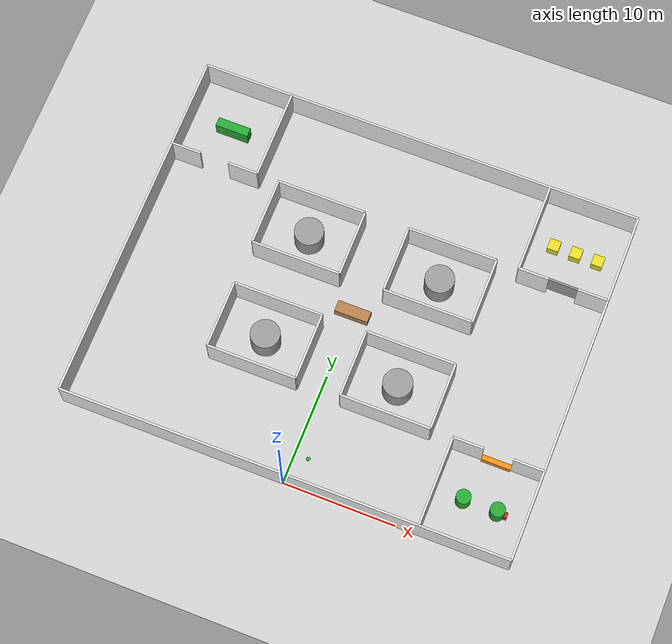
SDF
<?xml version='1.0' encoding='utf-8'?>
<sdf version="1.6">
  <world name="default">
    <physics name="default_physics" default="0" type="ode">
      <max_step_size>0.004</max_step_size>
      <real_time_update_rate>250</real_time_update_rate>
      <real_time_factor>1.0</real_time_factor>
    </physics>
    <scene>
      <ambient>0.65 0.65 0.65 1</ambient>
      <background>0.85 0.88 0.92 1</background>
    </scene>
    <include>
      <uri>model://sun</uri>
    </include>
    <include>
      <uri>model://ground_plane</uri>
    </include>
    <model name="outer_south_0">
      <static>true</static>
      <pose>0.000000 0.000000 1.600000 0.000000 0.000000 0.000000</pose>
      <link name="link">
        <collision name="collision">
          <geometry>
            <box>
              <size>40.000000 0.180000 3.200000</size>
            </box>
          </geometry>
        </collision>
        <visual name="visual">
          <geometry>
            <box>
              <size>40.000000 0.180000 3.200000</size>
            </box>
          </geometry>
          <material>
            <script>
              <uri>file://media/materials/scripts/gazebo.material</uri>
              <name>Gazebo/White</name>
            </script>
          </material>
        </visual>
      </link>
    </model>
    <model name="outer_north_0">
      <static>true</static>
      <pose>0.000000 32.000000 1.600000 0.000000 0.000000 0.000000</pose>
      <link name="link">
        <collision name="collision">
          <geometry>
            <box>
              <size>40.000000 0.180000 3.200000</size>
            </box>
          </geometry>
        </collision>
        <visual name="visual">
          <geometry>
            <box>
              <size>40.000000 0.180000 3.200000</size>
            </box>
          </geometry>
          <material>
            <script>
              <uri>file://media/materials/scripts/gazebo.material</uri>
              <name>Gazebo/White</name>
            </script>
          </material>
        </visual>
      </link>
    </model>
    <model name="outer_west_0">
      <static>true</static>
      <pose>-20.000000 16.000000 1.600000 0.000000 0.000000 0.000000</pose>
      <link name="link">
        <collision name="collision">
          <geometry>
            <box>
              <size>0.180000 32.000000 3.200000</size>
            </box>
          </geometry>
        </collision>
        <visual name="visual">
          <geometry>
            <box>
              <size>0.180000 32.000000 3.200000</size>
            </box>
          </geometry>
          <material>
            <script>
              <uri>file://media/materials/scripts/gazebo.material</uri>
              <name>Gazebo/White</name>
            </script>
          </material>
        </visual>
      </link>
    </model>
    <model name="outer_east_0">
      <static>true</static>
      <pose>20.000000 16.000000 1.600000 0.000000 0.000000 0.000000</pose>
      <link name="link">
        <collision name="collision">
          <geometry>
            <box>
              <size>0.180000 32.000000 3.200000</size>
            </box>
          </geometry>
        </collision>
        <visual name="visual">
          <geometry>
            <box>
              <size>0.180000 32.000000 3.200000</size>
            </box>
          </geometry>
          <material>
            <script>
              <uri>file://media/materials/scripts/gazebo.material</uri>
              <name>Gazebo/White</name>
            </script>
          </material>
        </visual>
      </link>
    </model>
    <model name="cell0_s_0">
      <static>true</static>
      <pose>-6.000000 8.000000 1.600000 0.000000 0.000000 0.000000</pose>
      <link name="link">
        <collision name="collision">
          <geometry>
            <box>
              <size>8.000000 0.180000 3.200000</size>
            </box>
          </geometry>
        </collision>
        <visual name="visual">
          <geometry>
            <box>
              <size>8.000000 0.180000 3.200000</size>
            </box>
          </geometry>
          <material>
            <script>
              <uri>file://media/materials/scripts/gazebo.material</uri>
              <name>Gazebo/White</name>
            </script>
          </material>
        </visual>
      </link>
    </model>
    <model name="cell0_n_0">
      <static>true</static>
      <pose>-6.000000 14.000000 1.600000 0.000000 0.000000 0.000000</pose>
      <link name="link">
        <collision name="collision">
          <geometry>
            <box>
              <size>8.000000 0.180000 3.200000</size>
            </box>
          </geometry>
        </collision>
        <visual name="visual">
          <geometry>
            <box>
              <size>8.000000 0.180000 3.200000</size>
            </box>
          </geometry>
          <material>
            <script>
              <uri>file://media/materials/scripts/gazebo.material</uri>
              <name>Gazebo/White</name>
            </script>
          </material>
        </visual>
      </link>
    </model>
    <model name="cell0_w_0">
      <static>true</static>
      <pose>-10.000000 11.000000 1.600000 0.000000 0.000000 0.000000</pose>
      <link name="link">
        <collision name="collision">
          <geometry>
            <box>
              <size>0.180000 6.000000 3.200000</size>
            </box>
          </geometry>
        </collision>
        <visual name="visual">
          <geometry>
            <box>
              <size>0.180000 6.000000 3.200000</size>
            </box>
          </geometry>
          <material>
            <script>
              <uri>file://media/materials/scripts/gazebo.material</uri>
              <name>Gazebo/White</name>
            </script>
          </material>
        </visual>
      </link>
    </model>
    <model name="cell0_e_0">
      <static>true</static>
      <pose>-2.000000 11.000000 1.600000 0.000000 0.000000 0.000000</pose>
      <link name="link">
        <collision name="collision">
          <geometry>
            <box>
              <size>0.180000 6.000000 3.200000</size>
            </box>
          </geometry>
        </collision>
        <visual name="visual">
          <geometry>
            <box>
              <size>0.180000 6.000000 3.200000</size>
            </box>
          </geometry>
          <material>
            <script>
              <uri>file://media/materials/scripts/gazebo.material</uri>
              <name>Gazebo/White</name>
            </script>
          </material>
        </visual>
      </link>
    </model>
    <model name="process_tank_0">
      <static>true</static>
      <pose>-6.000000 11.000000 1.100000 0.000000 0.000000 0.000000</pose>
      <link name="link">
        <collision name="collision">
          <geometry>
            <cylinder>
              <radius>1.3</radius>
              <length>2.2</length>
            </cylinder>
          </geometry>
        </collision>
        <visual name="visual">
          <geometry>
            <cylinder>
              <radius>1.3</radius>
              <length>2.2</length>
            </cylinder>
          </geometry>
          <material>
            <script>
              <uri>file://media/materials/scripts/gazebo.material</uri>
              <name>Gazebo/Grey</name>
            </script>
          </material>
        </visual>
      </link>
    </model>
    <model name="cell1_s_0">
      <static>true</static>
      <pose>6.000000 8.000000 1.600000 0.000000 0.000000 0.000000</pose>
      <link name="link">
        <collision name="collision">
          <geometry>
            <box>
              <size>8.000000 0.180000 3.200000</size>
            </box>
          </geometry>
        </collision>
        <visual name="visual">
          <geometry>
            <box>
              <size>8.000000 0.180000 3.200000</size>
            </box>
          </geometry>
          <material>
            <script>
              <uri>file://media/materials/scripts/gazebo.material</uri>
              <name>Gazebo/White</name>
            </script>
          </material>
        </visual>
      </link>
    </model>
    <model name="cell1_n_0">
      <static>true</static>
      <pose>6.000000 14.000000 1.600000 0.000000 0.000000 0.000000</pose>
      <link name="link">
        <collision name="collision">
          <geometry>
            <box>
              <size>8.000000 0.180000 3.200000</size>
            </box>
          </geometry>
        </collision>
        <visual name="visual">
          <geometry>
            <box>
              <size>8.000000 0.180000 3.200000</size>
            </box>
          </geometry>
          <material>
            <script>
              <uri>file://media/materials/scripts/gazebo.material</uri>
              <name>Gazebo/White</name>
            </script>
          </material>
        </visual>
      </link>
    </model>
    <model name="cell1_w_0">
      <static>true</static>
      <pose>2.000000 11.000000 1.600000 0.000000 0.000000 0.000000</pose>
      <link name="link">
        <collision name="collision">
          <geometry>
            <box>
              <size>0.180000 6.000000 3.200000</size>
            </box>
          </geometry>
        </collision>
        <visual name="visual">
          <geometry>
            <box>
              <size>0.180000 6.000000 3.200000</size>
            </box>
          </geometry>
          <material>
            <script>
              <uri>file://media/materials/scripts/gazebo.material</uri>
              <name>Gazebo/White</name>
            </script>
          </material>
        </visual>
      </link>
    </model>
    <model name="cell1_e_0">
      <static>true</static>
      <pose>10.000000 11.000000 1.600000 0.000000 0.000000 0.000000</pose>
      <link name="link">
        <collision name="collision">
          <geometry>
            <box>
              <size>0.180000 6.000000 3.200000</size>
            </box>
          </geometry>
        </collision>
        <visual name="visual">
          <geometry>
            <box>
              <size>0.180000 6.000000 3.200000</size>
            </box>
          </geometry>
          <material>
            <script>
              <uri>file://media/materials/scripts/gazebo.material</uri>
              <name>Gazebo/White</name>
            </script>
          </material>
        </visual>
      </link>
    </model>
    <model name="process_tank_1">
      <static>true</static>
      <pose>6.000000 11.000000 1.100000 0.000000 0.000000 0.000000</pose>
      <link name="link">
        <collision name="collision">
          <geometry>
            <cylinder>
              <radius>1.3</radius>
              <length>2.2</length>
            </cylinder>
          </geometry>
        </collision>
        <visual name="visual">
          <geometry>
            <cylinder>
              <radius>1.3</radius>
              <length>2.2</length>
            </cylinder>
          </geometry>
          <material>
            <script>
              <uri>file://media/materials/scripts/gazebo.material</uri>
              <name>Gazebo/Grey</name>
            </script>
          </material>
        </visual>
      </link>
    </model>
    <model name="cell2_s_0">
      <static>true</static>
      <pose>-6.000000 18.000000 1.600000 0.000000 0.000000 0.000000</pose>
      <link name="link">
        <collision name="collision">
          <geometry>
            <box>
              <size>8.000000 0.180000 3.200000</size>
            </box>
          </geometry>
        </collision>
        <visual name="visual">
          <geometry>
            <box>
              <size>8.000000 0.180000 3.200000</size>
            </box>
          </geometry>
          <material>
            <script>
              <uri>file://media/materials/scripts/gazebo.material</uri>
              <name>Gazebo/White</name>
            </script>
          </material>
        </visual>
      </link>
    </model>
    <model name="cell2_n_0">
      <static>true</static>
      <pose>-6.000000 24.000000 1.600000 0.000000 0.000000 0.000000</pose>
      <link name="link">
        <collision name="collision">
          <geometry>
            <box>
              <size>8.000000 0.180000 3.200000</size>
            </box>
          </geometry>
        </collision>
        <visual name="visual">
          <geometry>
            <box>
              <size>8.000000 0.180000 3.200000</size>
            </box>
          </geometry>
          <material>
            <script>
              <uri>file://media/materials/scripts/gazebo.material</uri>
              <name>Gazebo/White</name>
            </script>
          </material>
        </visual>
      </link>
    </model>
    <model name="cell2_w_0">
      <static>true</static>
      <pose>-10.000000 21.000000 1.600000 0.000000 0.000000 0.000000</pose>
      <link name="link">
        <collision name="collision">
          <geometry>
            <box>
              <size>0.180000 6.000000 3.200000</size>
            </box>
          </geometry>
        </collision>
        <visual name="visual">
          <geometry>
            <box>
              <size>0.180000 6.000000 3.200000</size>
            </box>
          </geometry>
          <material>
            <script>
              <uri>file://media/materials/scripts/gazebo.material</uri>
              <name>Gazebo/White</name>
            </script>
          </material>
        </visual>
      </link>
    </model>
    <model name="cell2_e_0">
      <static>true</static>
      <pose>-2.000000 21.000000 1.600000 0.000000 0.000000 0.000000</pose>
      <link name="link">
        <collision name="collision">
          <geometry>
            <box>
              <size>0.180000 6.000000 3.200000</size>
            </box>
          </geometry>
        </collision>
        <visual name="visual">
          <geometry>
            <box>
              <size>0.180000 6.000000 3.200000</size>
            </box>
          </geometry>
          <material>
            <script>
              <uri>file://media/materials/scripts/gazebo.material</uri>
              <name>Gazebo/White</name>
            </script>
          </material>
        </visual>
      </link>
    </model>
    <model name="process_tank_2">
      <static>true</static>
      <pose>-6.000000 21.000000 1.100000 0.000000 0.000000 0.000000</pose>
      <link name="link">
        <collision name="collision">
          <geometry>
            <cylinder>
              <radius>1.3</radius>
              <length>2.2</length>
            </cylinder>
          </geometry>
        </collision>
        <visual name="visual">
          <geometry>
            <cylinder>
              <radius>1.3</radius>
              <length>2.2</length>
            </cylinder>
          </geometry>
          <material>
            <script>
              <uri>file://media/materials/scripts/gazebo.material</uri>
              <name>Gazebo/Grey</name>
            </script>
          </material>
        </visual>
      </link>
    </model>
    <model name="cell3_s_0">
      <static>true</static>
      <pose>6.000000 18.000000 1.600000 0.000000 0.000000 0.000000</pose>
      <link name="link">
        <collision name="collision">
          <geometry>
            <box>
              <size>8.000000 0.180000 3.200000</size>
            </box>
          </geometry>
        </collision>
        <visual name="visual">
          <geometry>
            <box>
              <size>8.000000 0.180000 3.200000</size>
            </box>
          </geometry>
          <material>
            <script>
              <uri>file://media/materials/scripts/gazebo.material</uri>
              <name>Gazebo/White</name>
            </script>
          </material>
        </visual>
      </link>
    </model>
    <model name="cell3_n_0">
      <static>true</static>
      <pose>6.000000 24.000000 1.600000 0.000000 0.000000 0.000000</pose>
      <link name="link">
        <collision name="collision">
          <geometry>
            <box>
              <size>8.000000 0.180000 3.200000</size>
            </box>
          </geometry>
        </collision>
        <visual name="visual">
          <geometry>
            <box>
              <size>8.000000 0.180000 3.200000</size>
            </box>
          </geometry>
          <material>
            <script>
              <uri>file://media/materials/scripts/gazebo.material</uri>
              <name>Gazebo/White</name>
            </script>
          </material>
        </visual>
      </link>
    </model>
    <model name="cell3_w_0">
      <static>true</static>
      <pose>2.000000 21.000000 1.600000 0.000000 0.000000 0.000000</pose>
      <link name="link">
        <collision name="collision">
          <geometry>
            <box>
              <size>0.180000 6.000000 3.200000</size>
            </box>
          </geometry>
        </collision>
        <visual name="visual">
          <geometry>
            <box>
              <size>0.180000 6.000000 3.200000</size>
            </box>
          </geometry>
          <material>
            <script>
              <uri>file://media/materials/scripts/gazebo.material</uri>
              <name>Gazebo/White</name>
            </script>
          </material>
        </visual>
      </link>
    </model>
    <model name="cell3_e_0">
      <static>true</static>
      <pose>10.000000 21.000000 1.600000 0.000000 0.000000 0.000000</pose>
      <link name="link">
        <collision name="collision">
          <geometry>
            <box>
              <size>0.180000 6.000000 3.200000</size>
            </box>
          </geometry>
        </collision>
        <visual name="visual">
          <geometry>
            <box>
              <size>0.180000 6.000000 3.200000</size>
            </box>
          </geometry>
          <material>
            <script>
              <uri>file://media/materials/scripts/gazebo.material</uri>
              <name>Gazebo/White</name>
            </script>
          </material>
        </visual>
      </link>
    </model>
    <model name="process_tank_3">
      <static>true</static>
      <pose>6.000000 21.000000 1.100000 0.000000 0.000000 0.000000</pose>
      <link name="link">
        <collision name="collision">
          <geometry>
            <cylinder>
              <radius>1.3</radius>
              <length>2.2</length>
            </cylinder>
          </geometry>
        </collision>
        <visual name="visual">
          <geometry>
            <cylinder>
              <radius>1.3</radius>
              <length>2.2</length>
            </cylinder>
          </geometry>
          <material>
            <script>
              <uri>file://media/materials/scripts/gazebo.material</uri>
              <name>Gazebo/Grey</name>
            </script>
          </material>
        </visual>
      </link>
    </model>
    <model name="control_s_0">
      <static>true</static>
      <pose>-18.650000 24.000000 1.600000 0.000000 0.000000 0.000000</pose>
      <link name="link">
        <collision name="collision">
          <geometry>
            <box>
              <size>2.700000 0.180000 3.200000</size>
            </box>
          </geometry>
        </collision>
        <visual name="visual">
          <geometry>
            <box>
              <size>2.700000 0.180000 3.200000</size>
            </box>
          </geometry>
          <material>
            <script>
              <uri>file://media/materials/scripts/gazebo.material</uri>
              <name>Gazebo/White</name>
            </script>
          </material>
        </visual>
      </link>
    </model>
    <model name="control_s_1">
      <static>true</static>
      <pose>-13.350000 24.000000 1.600000 0.000000 0.000000 0.000000</pose>
      <link name="link">
        <collision name="collision">
          <geometry>
            <box>
              <size>2.700000 0.180000 3.200000</size>
            </box>
          </geometry>
        </collision>
        <visual name="visual">
          <geometry>
            <box>
              <size>2.700000 0.180000 3.200000</size>
            </box>
          </geometry>
          <material>
            <script>
              <uri>file://media/materials/scripts/gazebo.material</uri>
              <name>Gazebo/White</name>
            </script>
          </material>
        </visual>
      </link>
    </model>
    <model name="control_e_0">
      <static>true</static>
      <pose>-12.000000 28.000000 1.600000 0.000000 0.000000 0.000000</pose>
      <link name="link">
        <collision name="collision">
          <geometry>
            <box>
              <size>0.180000 8.000000 3.200000</size>
            </box>
          </geometry>
        </collision>
        <visual name="visual">
          <geometry>
            <box>
              <size>0.180000 8.000000 3.200000</size>
            </box>
          </geometry>
          <material>
            <script>
              <uri>file://media/materials/scripts/gazebo.material</uri>
              <name>Gazebo/White</name>
            </script>
          </material>
        </visual>
      </link>
    </model>
    <model name="cable_s_0">
      <static>true</static>
      <pose>13.350000 24.000000 1.600000 0.000000 0.000000 0.000000</pose>
      <link name="link">
        <collision name="collision">
          <geometry>
            <box>
              <size>2.700000 0.180000 3.200000</size>
            </box>
          </geometry>
        </collision>
        <visual name="visual">
          <geometry>
            <box>
              <size>2.700000 0.180000 3.200000</size>
            </box>
          </geometry>
          <material>
            <script>
              <uri>file://media/materials/scripts/gazebo.material</uri>
              <name>Gazebo/White</name>
            </script>
          </material>
        </visual>
      </link>
    </model>
    <model name="cable_s_1">
      <static>true</static>
      <pose>18.650000 24.000000 1.600000 0.000000 0.000000 0.000000</pose>
      <link name="link">
        <collision name="collision">
          <geometry>
            <box>
              <size>2.700000 0.180000 3.200000</size>
            </box>
          </geometry>
        </collision>
        <visual name="visual">
          <geometry>
            <box>
              <size>2.700000 0.180000 3.200000</size>
            </box>
          </geometry>
          <material>
            <script>
              <uri>file://media/materials/scripts/gazebo.material</uri>
              <name>Gazebo/White</name>
            </script>
          </material>
        </visual>
      </link>
    </model>
    <model name="cable_w_0">
      <static>true</static>
      <pose>12.000000 28.000000 1.600000 0.000000 0.000000 0.000000</pose>
      <link name="link">
        <collision name="collision">
          <geometry>
            <box>
              <size>0.180000 8.000000 3.200000</size>
            </box>
          </geometry>
        </collision>
        <visual name="visual">
          <geometry>
            <box>
              <size>0.180000 8.000000 3.200000</size>
            </box>
          </geometry>
          <material>
            <script>
              <uri>file://media/materials/scripts/gazebo.material</uri>
              <name>Gazebo/White</name>
            </script>
          </material>
        </visual>
      </link>
    </model>
    <model name="cable_low_pipe_rack">
      <static>true</static>
      <pose>16.000000 24.000000 2.150000 0.000000 0.000000 0.000000</pose>
      <link name="link">
        <collision name="collision">
          <geometry>
            <box>
              <size>2.600000 0.180000 2.100000</size>
            </box>
          </geometry>
        </collision>
        <visual name="visual">
          <geometry>
            <box>
              <size>2.600000 0.180000 2.100000</size>
            </box>
          </geometry>
          <material>
            <script>
              <uri>file://media/materials/scripts/gazebo.material</uri>
              <name>Gazebo/Grey</name>
            </script>
          </material>
        </visual>
      </link>
    </model>
    <model name="pump_n_0">
      <static>true</static>
      <pose>13.350000 8.000000 1.600000 0.000000 0.000000 0.000000</pose>
      <link name="link">
        <collision name="collision">
          <geometry>
            <box>
              <size>2.700000 0.180000 3.200000</size>
            </box>
          </geometry>
        </collision>
        <visual name="visual">
          <geometry>
            <box>
              <size>2.700000 0.180000 3.200000</size>
            </box>
          </geometry>
          <material>
            <script>
              <uri>file://media/materials/scripts/gazebo.material</uri>
              <name>Gazebo/White</name>
            </script>
          </material>
        </visual>
      </link>
    </model>
    <model name="pump_n_1">
      <static>true</static>
      <pose>18.650000 8.000000 1.600000 0.000000 0.000000 0.000000</pose>
      <link name="link">
        <collision name="collision">
          <geometry>
            <box>
              <size>2.700000 0.180000 3.200000</size>
            </box>
          </geometry>
        </collision>
        <visual name="visual">
          <geometry>
            <box>
              <size>2.700000 0.180000 3.200000</size>
            </box>
          </geometry>
          <material>
            <script>
              <uri>file://media/materials/scripts/gazebo.material</uri>
              <name>Gazebo/White</name>
            </script>
          </material>
        </visual>
      </link>
    </model>
    <model name="pump_w_0">
      <static>true</static>
      <pose>12.000000 4.000000 1.600000 0.000000 0.000000 0.000000</pose>
      <link name="link">
        <collision name="collision">
          <geometry>
            <box>
              <size>0.180000 8.000000 3.200000</size>
            </box>
          </geometry>
        </collision>
        <visual name="visual">
          <geometry>
            <box>
              <size>0.180000 8.000000 3.200000</size>
            </box>
          </geometry>
          <material>
            <script>
              <uri>file://media/materials/scripts/gazebo.material</uri>
              <name>Gazebo/White</name>
            </script>
          </material>
        </visual>
      </link>
    </model>
    <model name="pump_spill_berm">
      <static>true</static>
      <pose>16.000000 8.000000 0.325000 0.000000 0.000000 0.000000</pose>
      <link name="link">
        <collision name="collision">
          <geometry>
            <box>
              <size>2.600000 0.450000 0.650000</size>
            </box>
          </geometry>
        </collision>
        <visual name="visual">
          <geometry>
            <box>
              <size>2.600000 0.450000 0.650000</size>
            </box>
          </geometry>
          <material>
            <script>
              <uri>file://media/materials/scripts/gazebo.material</uri>
              <name>Gazebo/Orange</name>
            </script>
          </material>
        </visual>
      </link>
    </model>
    <model name="control_console">
      <static>true</static>
      <pose>-16.000000 28.000000 0.750000 0.000000 0.000000 0.000000</pose>
      <link name="link">
        <collision name="collision">
          <geometry>
            <box>
              <size>3.000000 0.800000 1.500000</size>
            </box>
          </geometry>
        </collision>
        <visual name="visual">
          <geometry>
            <box>
              <size>3.000000 0.800000 1.500000</size>
            </box>
          </geometry>
          <material>
            <script>
              <uri>file://media/materials/scripts/gazebo.material</uri>
              <name>Gazebo/Green</name>
            </script>
          </material>
        </visual>
      </link>
    </model>
    <model name="cable_reel_14">
      <static>true</static>
      <pose>14.000000 28.000000 0.450000 0.000000 0.000000 0.000000</pose>
      <link name="link">
        <collision name="collision">
          <geometry>
            <box>
              <size>1.000000 1.000000 0.900000</size>
            </box>
          </geometry>
        </collision>
        <visual name="visual">
          <geometry>
            <box>
              <size>1.000000 1.000000 0.900000</size>
            </box>
          </geometry>
          <material>
            <script>
              <uri>file://media/materials/scripts/gazebo.material</uri>
              <name>Gazebo/Yellow</name>
            </script>
          </material>
        </visual>
      </link>
    </model>
    <model name="cable_reel_16">
      <static>true</static>
      <pose>16.000000 28.000000 0.450000 0.000000 0.000000 0.000000</pose>
      <link name="link">
        <collision name="collision">
          <geometry>
            <box>
              <size>1.000000 1.000000 0.900000</size>
            </box>
          </geometry>
        </collision>
        <visual name="visual">
          <geometry>
            <box>
              <size>1.000000 1.000000 0.900000</size>
            </box>
          </geometry>
          <material>
            <script>
              <uri>file://media/materials/scripts/gazebo.material</uri>
              <name>Gazebo/Yellow</name>
            </script>
          </material>
        </visual>
      </link>
    </model>
    <model name="cable_reel_18">
      <static>true</static>
      <pose>18.000000 28.000000 0.450000 0.000000 0.000000 0.000000</pose>
      <link name="link">
        <collision name="collision">
          <geometry>
            <box>
              <size>1.000000 1.000000 0.900000</size>
            </box>
          </geometry>
        </collision>
        <visual name="visual">
          <geometry>
            <box>
              <size>1.000000 1.000000 0.900000</size>
            </box>
          </geometry>
          <material>
            <script>
              <uri>file://media/materials/scripts/gazebo.material</uri>
              <name>Gazebo/Yellow</name>
            </script>
          </material>
        </visual>
      </link>
    </model>
    <model name="pump_14.5">
      <static>true</static>
      <pose>14.500000 4.000000 0.800000 0.000000 0.000000 0.000000</pose>
      <link name="link">
        <collision name="collision">
          <geometry>
            <cylinder>
              <radius>0.65</radius>
              <length>1.6</length>
            </cylinder>
          </geometry>
        </collision>
        <visual name="visual">
          <geometry>
            <cylinder>
              <radius>0.65</radius>
              <length>1.6</length>
            </cylinder>
          </geometry>
          <material>
            <script>
              <uri>file://media/materials/scripts/gazebo.material</uri>
              <name>Gazebo/Green</name>
            </script>
          </material>
        </visual>
      </link>
    </model>
    <model name="pump_17.5">
      <static>true</static>
      <pose>17.500000 4.000000 0.800000 0.000000 0.000000 0.000000</pose>
      <link name="link">
        <collision name="collision">
          <geometry>
            <cylinder>
              <radius>0.65</radius>
              <length>1.6</length>
            </cylinder>
          </geometry>
        </collision>
        <visual name="visual">
          <geometry>
            <cylinder>
              <radius>0.65</radius>
              <length>1.6</length>
            </cylinder>
          </geometry>
          <material>
            <script>
              <uri>file://media/materials/scripts/gazebo.material</uri>
              <name>Gazebo/Green</name>
            </script>
          </material>
        </visual>
      </link>
    </model>
    <model name="central_bridge">
      <static>true</static>
      <pose>0.000000 16.000000 0.450000 0.000000 0.000000 0.000000</pose>
      <link name="link">
        <collision name="collision">
          <geometry>
            <box>
              <size>3.000000 1.000000 0.900000</size>
            </box>
          </geometry>
        </collision>
        <visual name="visual">
          <geometry>
            <box>
              <size>3.000000 1.000000 0.900000</size>
            </box>
          </geometry>
          <material>
            <script>
              <uri>file://media/materials/scripts/gazebo.material</uri>
              <name>Gazebo/Wood</name>
            </script>
          </material>
        </visual>
      </link>
    </model>
    <model name="robot_start_1">
      <static>true</static>
      <pose>0.000000 2.000000 0.015000 0.000000 0.000000 0.000000</pose>
      <link name="link">
        <visual name="visual">
          <geometry>
            <cylinder>
              <radius>0.18</radius>
              <length>0.03</length>
            </cylinder>
          </geometry>
          <material>
            <script>
              <uri>file://media/materials/scripts/gazebo.material</uri>
              <name>Gazebo/Green</name>
            </script>
          </material>
        </visual>
      </link>
    </model>
    <model name="robot_start_2">
      <static>true</static>
      <pose>0.000000 3.500000 0.015000 0.000000 0.000000 0.000000</pose>
      <link name="link">
        <visual name="visual">
          <geometry>
            <cylinder>
              <radius>0.18</radius>
              <length>0.03</length>
            </cylinder>
          </geometry>
          <material>
            <script>
              <uri>file://media/materials/scripts/gazebo.material</uri>
              <name>Gazebo/Green</name>
            </script>
          </material>
        </visual>
      </link>
    </model>
    <model name="robot_start_3">
      <static>true</static>
      <pose>1.200000 2.700000 0.015000 0.000000 0.000000 0.000000</pose>
      <link name="link">
        <visual name="visual">
          <geometry>
            <cylinder>
              <radius>0.18</radius>
              <length>0.03</length>
            </cylinder>
          </geometry>
          <material>
            <script>
              <uri>file://media/materials/scripts/gazebo.material</uri>
              <name>Gazebo/Green</name>
            </script>
          </material>
        </visual>
      </link>
    </model>
    <gui fullscreen="0">
      <camera name="user_camera">
        <pose>0.000 14.000 45.0 0 0.95 1.5708</pose>
      </camera>
    </gui>
    <model name="red_target_case">
      <static>true</static>
      <pose>18.000000 4.000000 0.400000 0.000000 0.000000 3.141593</pose>
      <link name="link">
        <collision name="collision">
          <geometry>
            <box>
              <size>0.800000 0.500000 0.800000</size>
            </box>
          </geometry>
        </collision>
        <visual name="visual">
          <geometry>
            <box>
              <size>0.800000 0.500000 0.800000</size>
            </box>
          </geometry>
          <material>
            <script>
              <uri>file://media/materials/scripts/gazebo.material</uri>
              <name>Gazebo/Red</name>
            </script>
          </material>
        </visual>
      </link>
    </model>
    <model name="red_target_cross_vertical">
      <static>true</static>
      <pose>18.000000 4.256000 0.430000 0.000000 0.000000 3.141593</pose>
      <link name="link">
        <visual name="visual">
          <geometry>
            <box>
              <size>0.100000 0.025000 0.420000</size>
            </box>
          </geometry>
          <material>
            <script>
              <uri>file://media/materials/scripts/gazebo.material</uri>
              <name>Gazebo/White</name>
            </script>
          </material>
        </visual>
      </link>
    </model>
    <model name="red_target_cross_horizontal">
      <static>true</static>
      <pose>18.000000 4.256000 0.430000 0.000000 0.000000 3.141593</pose>
      <link name="link">
        <visual name="visual">
          <geometry>
            <box>
              <size>0.340000 0.025000 0.100000</size>
            </box>
          </geometry>
          <material>
            <script>
              <uri>file://media/materials/scripts/gazebo.material</uri>
              <name>Gazebo/White</name>
            </script>
          </material>
        </visual>
      </link>
    </model>
  </world>
</sdf>
